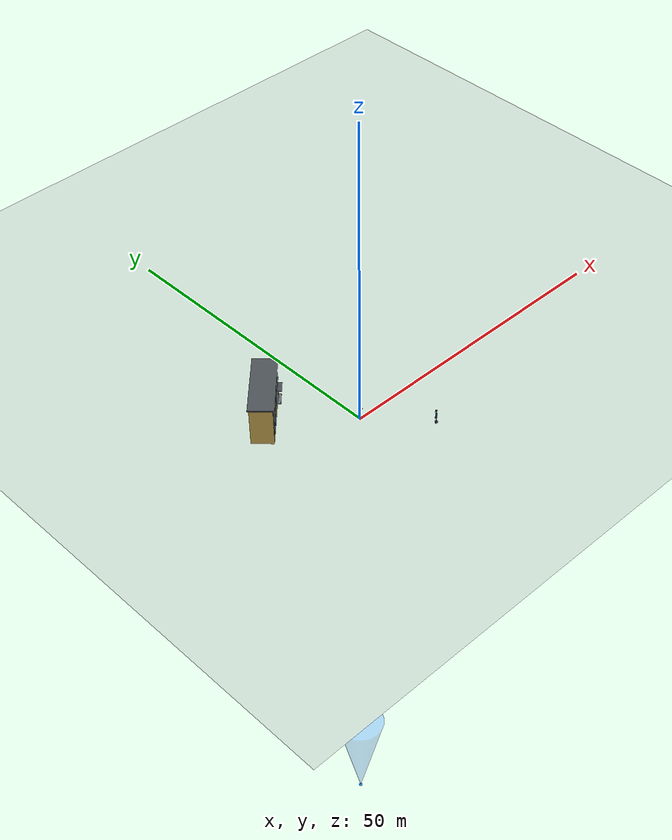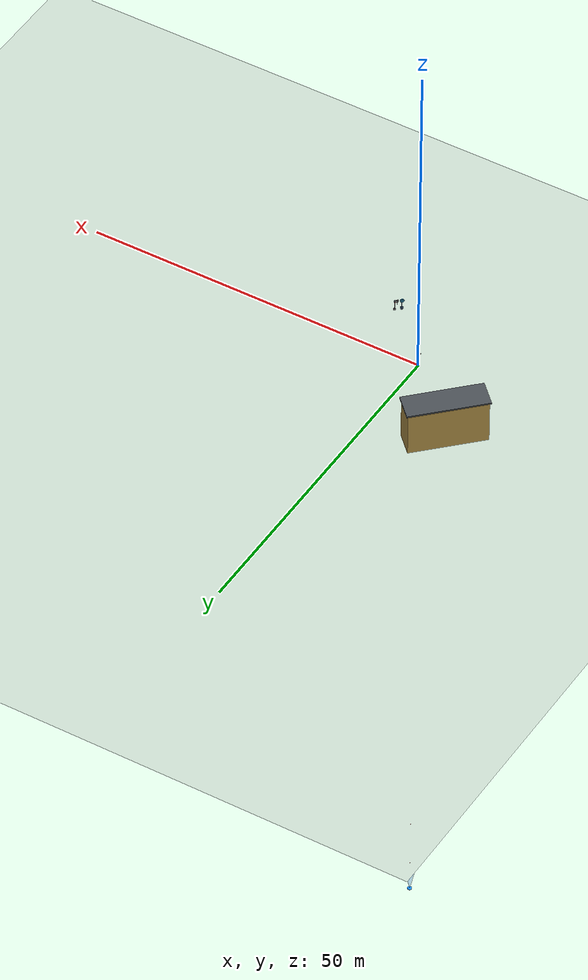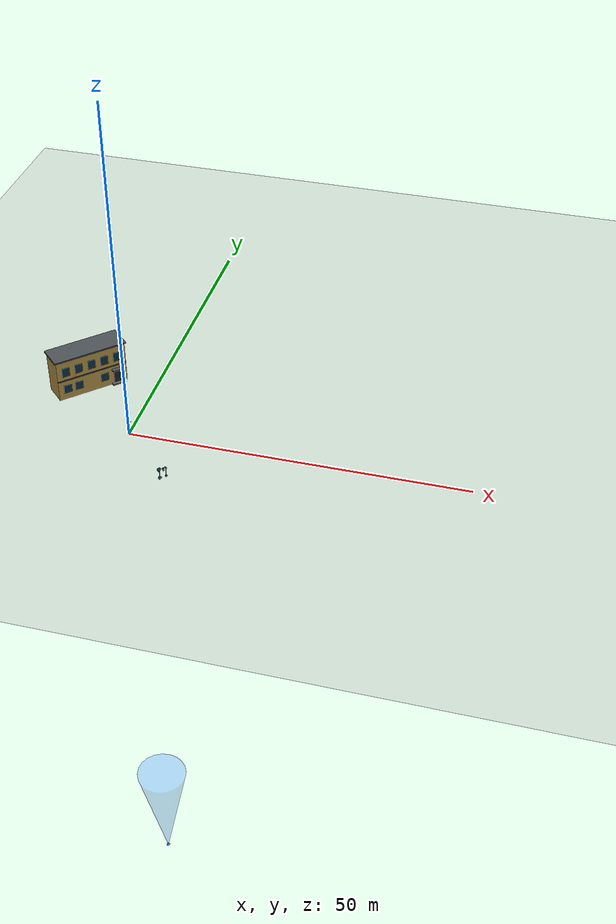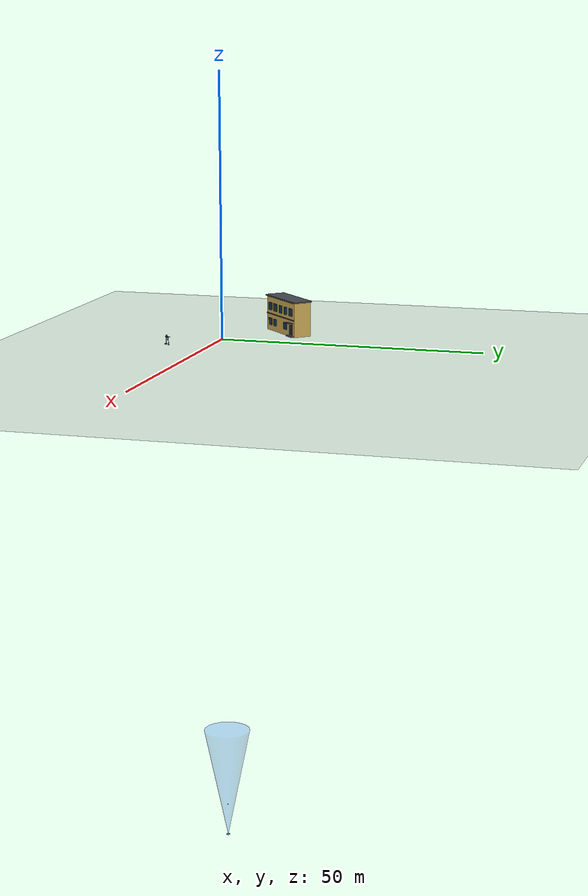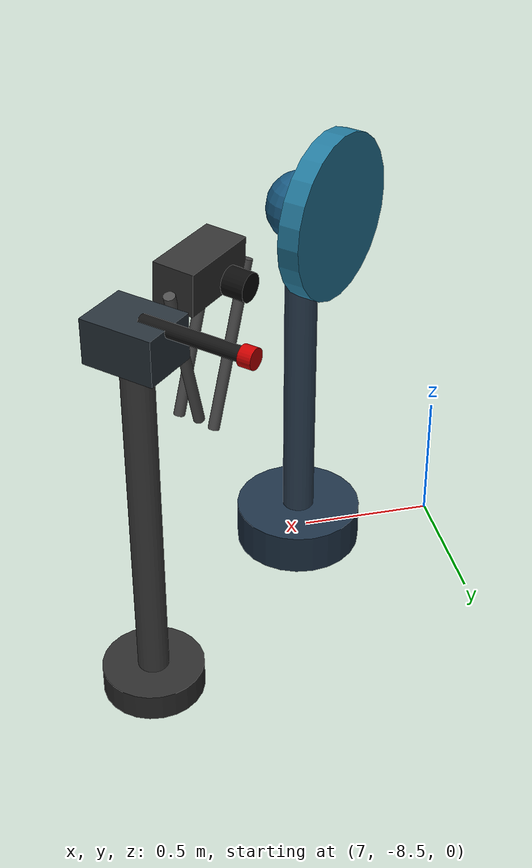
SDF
<?xml version="1.0" ?>
<sdf version="1.8">
  <world name="drone_world">

    <!-- ===== 物理引擎 ===== -->
    <physics name="1ms" type="ignored">
      <max_step_size>0.001</max_step_size>
      <real_time_factor>1.0</real_time_factor>
    </physics>

    <!-- ===== 插件 ===== -->
    <plugin
      filename="gz-sim-user-commands-system"
      name="gz::sim::systems::UserCommands">
    </plugin>
    <plugin
      filename="gz-sim-physics-system"
      name="gz::sim::systems::Physics">
    </plugin>
    <plugin
      filename="gz-sim-scene-broadcaster-system"
      name="gz::sim::systems::SceneBroadcaster">
    </plugin>
    <plugin
      filename="gz-sim-sensors-system"
      name="gz::sim::systems::Sensors">
    </plugin>

    <!-- ===== 光源 ===== -->
    <light type="directional" name="sun">
      <cast_shadows>true</cast_shadows>
      <pose>0 0 10 0 0 0</pose>
      <diffuse>0.8 0.8 0.8 1</diffuse>
      <specular>0.2 0.2 0.2 1</specular>
      <direction>-0.5 0.1 -0.9</direction>
    </light>

    <!-- ===== 地面 ===== -->
    <model name="ground_plane">
      <static>true</static>
      <link name="link">
        <collision name="collision">
          <geometry>
            <plane>
              <normal>0 0 1</normal>
              <size>100 100</size>
            </plane>
          </geometry>
        </collision>
        <visual name="visual">
          <geometry>
            <plane>
              <normal>0 0 1</normal>
              <size>100 100</size>
            </plane>
          </geometry>
          <material>
            <ambient>0.3 0.3 0.3</ambient>
            <diffuse>0.6 0.6 0.6</diffuse>
            <specular>0.1 0.1 0.1</specular>
          </material>
        </visual>
      </link>
    </model>

    <!-- ===== 无人机后方背景建筑 ===== -->
    <!--
      相机位于 (8,-8)，朝向原点；建筑沿同一视线放在 (-10,10)，使画面形成
      相机 -> 无人机 -> 建筑的前中后景关系。建筑正立面的局部 +X 轴朝向相机。
    -->
    <model name="background_building">
      <static>true</static>
      <pose>-10 10 0 0 0 -0.785398</pose>

      <link name="building_link">
        <collision name="building_collision">
          <pose>0 0 3.25 0 0 0</pose>
          <geometry>
            <box>
              <size>3.5 11.0 6.5</size>
            </box>
          </geometry>
        </collision>

        <!-- 暖黄色石材主体，与红黑色无人机形成明显色相和明度对比 -->
        <visual name="building_body">
          <pose>0 0 3.25 0 0 0</pose>
          <geometry>
            <box>
              <size>3.5 11.0 6.5</size>
            </box>
          </geometry>
          <material>
            <ambient>0.58 0.46 0.24 1</ambient>
            <diffuse>0.82 0.68 0.34 1</diffuse>
            <specular>0.12 0.10 0.06 1</specular>
          </material>
        </visual>

        <!-- 屋顶檐口和楼层分隔线让远景轮廓更清晰 -->
        <visual name="roof_cornice">
          <pose>0 0 6.62 0 0 0</pose>
          <geometry>
            <box>
              <size>3.9 11.4 0.24</size>
            </box>
          </geometry>
          <material>
            <ambient>0.20 0.22 0.24 1</ambient>
            <diffuse>0.28 0.30 0.32 1</diffuse>
          </material>
        </visual>
        <visual name="floor_band">
          <pose>1.78 0 3.22 0 0 0</pose>
          <geometry>
            <box>
              <size>0.10 11.05 0.18</size>
            </box>
          </geometry>
          <material>
            <ambient>0.18 0.20 0.22 1</ambient>
            <diffuse>0.25 0.27 0.29 1</diffuse>
          </material>
        </visual>

        <!-- 一层窗户，中央留作入口 -->
        <visual name="window_lower_left_outer">
          <pose>1.78 -4.05 1.72 0 0 0</pose>
          <geometry><box><size>0.08 1.25 1.30</size></box></geometry>
          <material>
            <ambient>0.05 0.12 0.16 1</ambient>
            <diffuse>0.08 0.22 0.30 1</diffuse>
            <specular>0.65 0.65 0.65 1</specular>
            <emissive>0.01 0.03 0.04 1</emissive>
          </material>
        </visual>
        <visual name="window_lower_left_inner">
          <pose>1.78 -2.25 1.72 0 0 0</pose>
          <geometry><box><size>0.08 1.25 1.30</size></box></geometry>
          <material>
            <ambient>0.05 0.12 0.16 1</ambient>
            <diffuse>0.08 0.22 0.30 1</diffuse>
            <specular>0.65 0.65 0.65 1</specular>
            <emissive>0.01 0.03 0.04 1</emissive>
          </material>
        </visual>
        <visual name="window_lower_right">
          <pose>1.78 1.90 1.72 0 0 0</pose>
          <geometry><box><size>0.08 1.25 1.30</size></box></geometry>
          <material>
            <ambient>0.05 0.12 0.16 1</ambient>
            <diffuse>0.08 0.22 0.30 1</diffuse>
            <specular>0.65 0.65 0.65 1</specular>
            <emissive>0.01 0.03 0.04 1</emissive>
          </material>
        </visual>
        <!-- 二层连续窗列 -->
        <visual name="window_upper_1">
          <pose>1.78 -4.10 4.65 0 0 0</pose>
          <geometry><box><size>0.08 1.20 1.45</size></box></geometry>
          <material>
            <ambient>0.05 0.12 0.16 1</ambient>
            <diffuse>0.08 0.22 0.30 1</diffuse>
            <specular>0.65 0.65 0.65 1</specular>
            <emissive>0.01 0.03 0.04 1</emissive>
          </material>
        </visual>
        <visual name="window_upper_2">
          <pose>1.78 -2.05 4.65 0 0 0</pose>
          <geometry><box><size>0.08 1.20 1.45</size></box></geometry>
          <material>
            <ambient>0.05 0.12 0.16 1</ambient>
            <diffuse>0.08 0.22 0.30 1</diffuse>
            <specular>0.65 0.65 0.65 1</specular>
            <emissive>0.01 0.03 0.04 1</emissive>
          </material>
        </visual>
        <visual name="window_upper_3">
          <pose>1.78 0 4.65 0 0 0</pose>
          <geometry><box><size>0.08 1.20 1.45</size></box></geometry>
          <material>
            <ambient>0.05 0.12 0.16 1</ambient>
            <diffuse>0.08 0.22 0.30 1</diffuse>
            <specular>0.65 0.65 0.65 1</specular>
            <emissive>0.01 0.03 0.04 1</emissive>
          </material>
        </visual>
        <visual name="window_upper_4">
          <pose>1.78 2.05 4.65 0 0 0</pose>
          <geometry><box><size>0.08 1.20 1.45</size></box></geometry>
          <material>
            <ambient>0.05 0.12 0.16 1</ambient>
            <diffuse>0.08 0.22 0.30 1</diffuse>
            <specular>0.65 0.65 0.65 1</specular>
            <emissive>0.01 0.03 0.04 1</emissive>
          </material>
        </visual>
        <visual name="window_upper_5">
          <pose>1.78 4.10 4.65 0 0 0</pose>
          <geometry><box><size>0.08 1.20 1.45</size></box></geometry>
          <material>
            <ambient>0.05 0.12 0.16 1</ambient>
            <diffuse>0.08 0.22 0.30 1</diffuse>
            <specular>0.65 0.65 0.65 1</specular>
            <emissive>0.01 0.03 0.04 1</emissive>
          </material>
        </visual>

        <!-- 主入口、雨棚和台阶 -->
        <visual name="entrance_door">
          <pose>1.79 4.05 1.25 0 0 0</pose>
          <geometry><box><size>0.10 1.35 2.50</size></box></geometry>
          <material>
            <ambient>0.10 0.11 0.12 1</ambient>
            <diffuse>0.14 0.16 0.18 1</diffuse>
            <specular>0.25 0.25 0.25 1</specular>
          </material>
        </visual>
        <visual name="entrance_canopy">
          <pose>2.10 4.05 2.62 0 0 0</pose>
          <geometry><box><size>0.72 1.95 0.14</size></box></geometry>
          <material>
            <ambient>0.18 0.20 0.22 1</ambient>
            <diffuse>0.26 0.28 0.30 1</diffuse>
          </material>
        </visual>
        <visual name="entrance_step">
          <pose>1.98 4.05 0.12 0 0 0</pose>
          <geometry><box><size>0.55 2.10 0.24</size></box></geometry>
          <material>
            <ambient>0.28 0.29 0.30 1</ambient>
            <diffuse>0.40 0.41 0.42 1</diffuse>
          </material>
        </visual>
      </link>
    </model>

    <!-- ===== 四旋翼无人机 ===== -->
    <model name="quadcopter">
      <pose>0 0 2.0 0 0 0</pose>
      <link name="base_link">
        <!-- 轨迹由 SetEntityState 控制；关闭重力避免控制器启动前无人机下落。 -->
        <gravity>false</gravity>

        <!-- 中心机身 -->
        <visual name="body">
          <cast_shadows>false</cast_shadows>
          <geometry>
            <box>
              <size>0.30 0.30 0.06</size>
            </box>
          </geometry>
          <material>
            <ambient>0.2 0.2 0.2 1</ambient>
            <diffuse>0.3 0.3 0.3 1</diffuse>
          </material>
        </visual>

        <!-- 机臂 1: +X 方向 -->
        <visual name="arm_front">
          <cast_shadows>false</cast_shadows>
          <pose>0.15 0 0 0 0 0.785</pose>
          <geometry>
            <box>
              <size>0.30 0.02 0.02</size>
            </box>
          </geometry>
          <material>
            <ambient>0.8 0.2 0.2 1</ambient>
            <diffuse>0.8 0.2 0.2 1</diffuse>
          </material>
        </visual>

        <!-- 机臂 2: -X 方向 -->
        <visual name="arm_back">
          <cast_shadows>false</cast_shadows>
          <pose>-0.15 0 0 0 0 0.785</pose>
          <geometry>
            <box>
              <size>0.30 0.02 0.02</size>
            </box>
          </geometry>
          <material>
            <ambient>0.8 0.2 0.2 1</ambient>
            <diffuse>0.8 0.2 0.2 1</diffuse>
          </material>
        </visual>

        <!-- 机臂 3: +Y 方向 -->
        <visual name="arm_left">
          <cast_shadows>false</cast_shadows>
          <pose>0 0.15 0 0 0 -0.785</pose>
          <geometry>
            <box>
              <size>0.30 0.02 0.02</size>
            </box>
          </geometry>
          <material>
            <ambient>0.8 0.2 0.2 1</ambient>
            <diffuse>0.8 0.2 0.2 1</diffuse>
          </material>
        </visual>

        <!-- 机臂 4: -Y 方向 -->
        <visual name="arm_right">
          <cast_shadows>false</cast_shadows>
          <pose>0 -0.15 0 0 0 -0.785</pose>
          <geometry>
            <box>
              <size>0.30 0.02 0.02</size>
            </box>
          </geometry>
          <material>
            <ambient>0.8 0.2 0.2 1</ambient>
            <diffuse>0.8 0.2 0.2 1</diffuse>
          </material>
        </visual>

        <!-- 电机 1 -->
        <visual name="motor_1">
          <cast_shadows>false</cast_shadows>
          <pose>0.18 0.18 0.04 0 0 0</pose>
          <geometry>
            <cylinder>
              <radius>0.035</radius>
              <length>0.03</length>
            </cylinder>
          </geometry>
          <material>
            <ambient>0.5 0.5 0.5 1</ambient>
            <diffuse>0.5 0.5 0.5 1</diffuse>
          </material>
        </visual>

        <!-- 电机 2 -->
        <visual name="motor_2">
          <cast_shadows>false</cast_shadows>
          <pose>-0.18 -0.18 0.04 0 0 0</pose>
          <geometry>
            <cylinder>
              <radius>0.035</radius>
              <length>0.03</length>
            </cylinder>
          </geometry>
          <material>
            <ambient>0.5 0.5 0.5 1</ambient>
            <diffuse>0.5 0.5 0.5 1</diffuse>
          </material>
        </visual>

        <!-- 电机 3 -->
        <visual name="motor_3">
          <cast_shadows>false</cast_shadows>
          <pose>0.18 -0.18 0.04 0 0 0</pose>
          <geometry>
            <cylinder>
              <radius>0.035</radius>
              <length>0.03</length>
            </cylinder>
          </geometry>
          <material>
            <ambient>0.5 0.5 0.5 1</ambient>
            <diffuse>0.5 0.5 0.5 1</diffuse>
          </material>
        </visual>

        <!-- 电机 4 -->
        <visual name="motor_4">
          <cast_shadows>false</cast_shadows>
          <pose>-0.18 0.18 0.04 0 0 0</pose>
          <geometry>
            <cylinder>
              <radius>0.035</radius>
              <length>0.03</length>
            </cylinder>
          </geometry>
          <material>
            <ambient>0.5 0.5 0.5 1</ambient>
            <diffuse>0.5 0.5 0.5 1</diffuse>
          </material>
        </visual>

        <!-- 螺旋桨 1 -->
        <visual name="propeller_1">
          <cast_shadows>false</cast_shadows>
          <pose>0.18 0.18 0.06 0 0 0</pose>
          <geometry>
            <cylinder>
              <radius>0.14</radius>
              <length>0.004</length>
            </cylinder>
          </geometry>
          <material>
            <ambient>0.1 0.1 0.1 0.7</ambient>
            <diffuse>0.1 0.1 0.1 0.7</diffuse>
          </material>
        </visual>

        <!-- 螺旋桨 2 -->
        <visual name="propeller_2">
          <cast_shadows>false</cast_shadows>
          <pose>-0.18 -0.18 0.06 0 0 0</pose>
          <geometry>
            <cylinder>
              <radius>0.14</radius>
              <length>0.004</length>
            </cylinder>
          </geometry>
          <material>
            <ambient>0.1 0.1 0.1 0.7</ambient>
            <diffuse>0.1 0.1 0.1 0.7</diffuse>
          </material>
        </visual>

        <!-- 螺旋桨 3 -->
        <visual name="propeller_3">
          <cast_shadows>false</cast_shadows>
          <pose>0.18 -0.18 0.06 0 0 0</pose>
          <geometry>
            <cylinder>
              <radius>0.14</radius>
              <length>0.004</length>
            </cylinder>
          </geometry>
          <material>
            <ambient>0.1 0.1 0.1 0.7</ambient>
            <diffuse>0.1 0.1 0.1 0.7</diffuse>
          </material>
        </visual>

        <!-- 螺旋桨 4 -->
        <visual name="propeller_4">
          <cast_shadows>false</cast_shadows>
          <pose>-0.18 0.18 0.06 0 0 0</pose>
          <geometry>
            <cylinder>
              <radius>0.14</radius>
              <length>0.004</length>
            </cylinder>
          </geometry>
          <material>
            <ambient>0.1 0.1 0.1 0.7</ambient>
            <diffuse>0.1 0.1 0.1 0.7</diffuse>
          </material>
        </visual>
      </link>
    </model>

   <!-- ===== 地面摄像机 ===== -->
   <!-- 放置在地面上，斜向上拍摄无人机 8 字飞行区域 -->
   <model name="ground_camera">
      <static>true</static>
      <pose>8.0 -8.0 1.5 0 0.044 2.356</pose>
      <!-- 位置: (8,-8,1.5) 地面高度1.5m -->
      <!-- 朝向: roll=0 pitch≈2.5° yaw=135° → 精确对准原点飞行中心 -->

      <link name="camera_link">
        <!-- 摄像机可视化外壳 -->
        <visual name="camera_body">
          <pose>0 0 0 0 0 0</pose>
          <geometry>
            <box>
              <size>0.15 0.3 0.15</size>
            </box>
          </geometry>
          <material>
            <ambient>0.1 0.1 0.1 1</ambient>
            <diffuse>0.2 0.2 0.2 1</diffuse>
          </material>
        </visual>

        <!-- 镜头可视化 -->
        <visual name="lens">
          <pose>0.15 0 0 0 1.57 0</pose>
          <geometry>
            <cylinder>
              <radius>0.05</radius>
              <length>0.08</length>
            </cylinder>
          </geometry>
          <material>
            <ambient>0.05 0.05 0.05 1</ambient>
            <diffuse>0.05 0.05 0.05 1</diffuse>
          </material>
        </visual>

        <!-- 三脚架 -->
        <visual name="tripod_leg_1">
          <pose>0 -0.08 -0.3 0.3 0 0</pose>
          <geometry>
            <cylinder>
              <radius>0.02</radius>
              <length>0.60</length>
            </cylinder>
          </geometry>
          <material>
            <ambient>0.3 0.3 0.3 1</ambient>
            <diffuse>0.3 0.3 0.3 1</diffuse>
          </material>
        </visual>

        <visual name="tripod_leg_2">
          <pose>0.07 0.08 -0.3 -0.3 0 0</pose>
          <geometry>
            <cylinder>
              <radius>0.02</radius>
              <length>0.60</length>
            </cylinder>
          </geometry>
          <material>
            <ambient>0.3 0.3 0.3 1</ambient>
            <diffuse>0.3 0.3 0.3 1</diffuse>
          </material>
        </visual>

        <visual name="tripod_leg_3">
          <pose>-0.07 0.08 -0.3 -0.3 0 0</pose>
          <geometry>
            <cylinder>
              <radius>0.02</radius>
              <length>0.60</length>
            </cylinder>
          </geometry>
          <material>
            <ambient>0.3 0.3 0.3 1</ambient>
            <diffuse>0.3 0.3 0.3 1</diffuse>
          </material>
        </visual>

        <!-- 摄像机传感器 -->
       <sensor name="camera_sensor" type="camera">
         <pose>0.15 0 0.05 0 0 0</pose>
         <always_on>true</always_on>
         <update_rate>30</update_rate>
         <visualize>true</visualize>
         <topic>ground_camera</topic>
         <camera>
            <!-- 不渲染激光束（bit 0x02），避免 YOLO 把无人机+激光线误识别为风筝 -->
            <visibility_mask>0x3FFFFFFD</visibility_mask>
           <horizontal_fov>1.047</horizontal_fov>
            <image>
              <width>1280</width>
              <height>720</height>
              <format>R8G8B8</format>
            </image>
            <clip>
              <near>0.1</near>
              <far>100</far>
            </clip>
          </camera>

          <!-- 视频录制插件 -->
          <plugin
            filename="gz-sim-camera-video-recorder-system"
            name="gz::sim::systems::CameraVideoRecorder">
            <service>ground_camera/record_video</service>
          </plugin>

        </sensor>

        <!-- 深度相机：与 RGB 摄像机同位姿，用于把目标像素反投影成 3D 世界坐标 -->
        <sensor name="depth_camera_sensor" type="depth_camera">
          <pose>0.15 0 0.05 0 0 0</pose>
          <always_on>true</always_on>
          <update_rate>30</update_rate>
          <visualize>false</visualize>
          <topic>ground_camera/depth</topic>
          <camera>
            <visibility_mask>0x3FFFFFFD</visibility_mask>
            <horizontal_fov>1.047</horizontal_fov>
            <image>
              <width>1280</width>
              <height>720</height>
              <format>R_FLOAT32</format>
            </image>
            <clip>
              <near>0.1</near>
              <far>100</far>
            </clip>
          </camera>
        </sensor>
      </link>
    </model>

    <!-- ===== 武器平台 ===== -->
    <!-- 放在地面摄像机右侧，炮口位置对应 laser_controller.py 的 weapon_* 默认参数 -->
    <model name="weapon_platform">
      <static>true</static>
      <pose>8.25 -7.75 0 0 0 2.356</pose>

      <link name="weapon_link">
        <visual name="base">
          <pose>0 0 0.05 0 0 0</pose>
          <geometry>
            <cylinder>
              <radius>0.18</radius>
              <length>0.10</length>
            </cylinder>
          </geometry>
          <material>
            <ambient>0.12 0.12 0.12 1</ambient>
            <diffuse>0.18 0.18 0.18 1</diffuse>
          </material>
        </visual>

        <visual name="pedestal">
          <pose>0 0 0.75 0 0 0</pose>
          <geometry>
            <cylinder>
              <radius>0.055</radius>
              <length>1.35</length>
            </cylinder>
          </geometry>
          <material>
            <ambient>0.18 0.18 0.18 1</ambient>
            <diffuse>0.25 0.25 0.25 1</diffuse>
          </material>
        </visual>

        <visual name="turret_body">
          <pose>0 0 1.43 0 0 0</pose>
          <geometry>
            <box>
              <size>0.26 0.20 0.16</size>
            </box>
          </geometry>
          <material>
            <ambient>0.10 0.12 0.14 1</ambient>
            <diffuse>0.16 0.20 0.23 1</diffuse>
          </material>
        </visual>

        <visual name="barrel">
          <pose>0.22 0 1.50 0 1.5708 0</pose>
          <geometry>
            <cylinder>
              <radius>0.025</radius>
              <length>0.38</length>
            </cylinder>
          </geometry>
          <material>
            <ambient>0.04 0.04 0.04 1</ambient>
            <diffuse>0.08 0.08 0.08 1</diffuse>
          </material>
        </visual>

       <visual name="muzzle">
         <pose>0.41 0 1.50 0 1.5708 0</pose>
         <geometry>
           <cylinder>
             <radius>0.035</radius>
             <length>0.045</length>
           </cylinder>
         </geometry>
         <material>
            <ambient>0.5 0.0 0.0 1</ambient>
            <diffuse>0.8 0.0 0.0 1</diffuse>
            <emissive>0.35 0.0 0.0 1</emissive>
         </material>
       </visual>
      </link>
    </model>

    <!-- ===== 无线电干扰平台 ===== -->
    <!-- 位于地面摄像机左侧；天线安装点由 scene_config.py 自动读取。 -->
    <model name="radio_jammer">
      <static>true</static>
      <pose>7.55 -8.45 0 0 0 2.356</pose>

      <link name="jammer_link">
        <visual name="jammer_base">
          <pose>0 0 0.08 0 0 0</pose>
          <geometry>
            <cylinder>
              <radius>0.24</radius>
              <length>0.16</length>
            </cylinder>
          </geometry>
          <material>
            <ambient>0.08 0.12 0.16 1</ambient>
            <diffuse>0.12 0.20 0.28 1</diffuse>
          </material>
        </visual>

        <visual name="jammer_mast">
          <pose>0 0 0.75 0 0 0</pose>
          <geometry>
            <cylinder>
              <radius>0.06</radius>
              <length>1.35</length>
            </cylinder>
          </geometry>
          <material>
            <ambient>0.12 0.16 0.20 1</ambient>
            <diffuse>0.18 0.26 0.34 1</diffuse>
          </material>
        </visual>

        <visual name="antenna_mount">
          <pose>0 0 1.45 0 0 0</pose>
          <geometry>
            <sphere>
              <radius>0.13</radius>
            </sphere>
          </geometry>
          <material>
            <ambient>0.08 0.20 0.30 1</ambient>
            <diffuse>0.10 0.36 0.52 1</diffuse>
            <specular>0.30 0.30 0.30 1</specular>
          </material>
        </visual>

        <visual name="antenna_dish">
          <pose>0.12 0 1.45 0 1.5708 0</pose>
          <geometry>
            <cylinder>
              <radius>0.30</radius>
              <length>0.08</length>
            </cylinder>
          </geometry>
          <material>
            <ambient>0.10 0.28 0.38 1</ambient>
            <diffuse>0.14 0.48 0.62 1</diffuse>
            <specular>0.45 0.45 0.45 1</specular>
          </material>
        </visual>
      </link>
    </model>

   <!-- ===== 激光束 ===== -->
   <!-- 从武器平台炮口发射的可视激光束，由 laser_controller 控制 -->
   <model name="laser_beam">
     <static>false</static>
     <pose>0 0 -100 0 0 0</pose>

     <link name="beam_link">
       <gravity>false</gravity>
       <visual name="beam">
         <cast_shadows>false</cast_shadows>
          <visibility_flags>0x02</visibility_flags>
         <pose>0 0 7.5 0 0 0</pose>
         <geometry>
           <cylinder>
             <radius>0.001</radius>
             <length>15.0</length>
           </cylinder>
         </geometry>
         <material>
            <ambient>1 0 0 1</ambient>
            <diffuse>1 0 0 1</diffuse>
            <specular>0.5 0.5 0.5 1</specular>
            <emissive>1 0 0 1</emissive>
         </material>
       </visual>
      </link>
    </model>

    <!-- ===== 无线电干扰锥 ===== -->
    <!--
      可视覆盖长度 22m；控制器仍使用固定 15m 虚拟瞄准点调整方向。
      visibility flag 0x02 使其仅在 Gazebo GUI 中显示，不进入地面相机画面。
    -->
    <model name="radio_jamming_beam">
      <static>false</static>
      <pose>0 0 -100 0 0 0</pose>

      <link name="jamming_beam_link">
        <gravity>false</gravity>
        <visual name="jamming_cone">
          <cast_shadows>false</cast_shadows>
          <visibility_flags>0x02</visibility_flags>
          <!-- 翻转圆锥，使尖端位于发射端，局部 +Z 指向覆盖方向。 -->
          <pose>0 0 11.0 3.141593 0 0</pose>
          <geometry>
            <cone>
              <radius>4.5</radius>
              <length>22.0</length>
            </cone>
          </geometry>
          <transparency>0.72</transparency>
          <material>
            <ambient>0.05 0.35 1.0 0.28</ambient>
            <diffuse>0.08 0.45 1.0 0.28</diffuse>
            <specular>0.30 0.50 1.0 0.28</specular>
            <emissive>0.02 0.18 0.65 0.28</emissive>
          </material>
        </visual>
        <visual name="jamming_emitter">
          <cast_shadows>false</cast_shadows>
          <visibility_flags>0x02</visibility_flags>
          <pose>0 0 0.05 0 0 0</pose>
          <geometry>
            <cylinder>
              <radius>0.32</radius>
              <length>0.10</length>
            </cylinder>
          </geometry>
          <material>
            <ambient>0.05 0.35 1.0 1</ambient>
            <diffuse>0.08 0.55 1.0 1</diffuse>
            <emissive>0.04 0.30 1.0 1</emissive>
          </material>
        </visual>
      </link>
    </model>

  </world>
</sdf>
